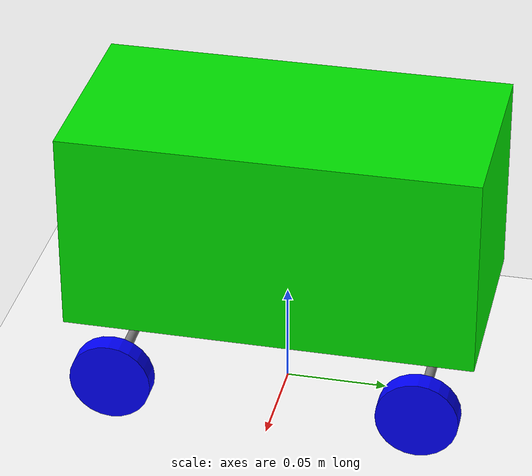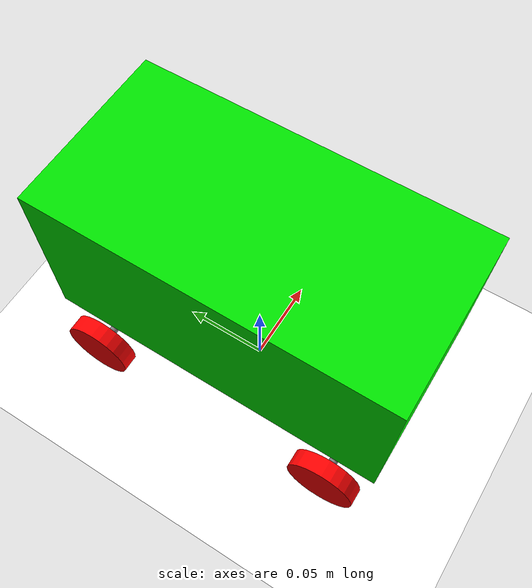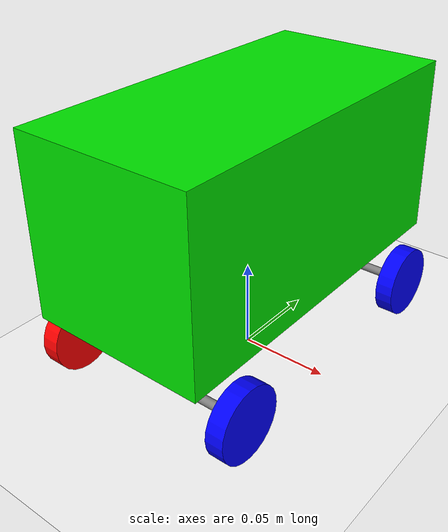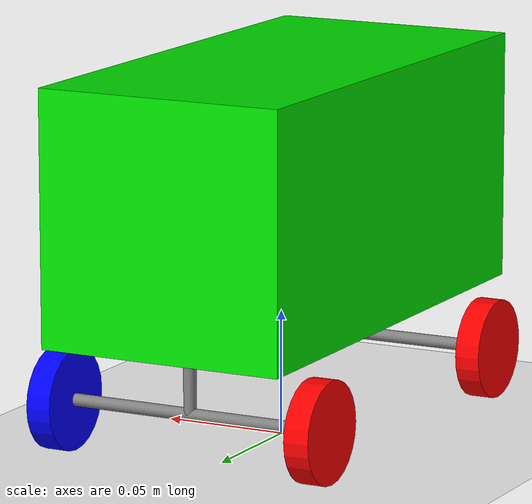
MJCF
<mujoco>
    <asset>
        <texture type="skybox" builtin="gradient" rgb1="1 1 1" rgb2=".6 .8 1" width="256" height="256"/>
    </asset>
    <worldbody>
        <light diffuse=".5 .5 .5" pos="0 0 3" dir="0 0 -1"/>
        <geom type="plane" size="1 1 0.1" rgba="1 1 1 1"/>
        <body pos="0 0 0.1">
            <joint type="free"/>
            <geom type="box" size=".05 .1 .05" rgba="0 .9 0 1"/>
            <body pos="0 .075 -.05">
                <geom type="cylinder" size="0.0025" fromto="0 0 0 0 0 -.025"/>
                <joint type="hinge" axis="0 0 1"/>
                <body pos="0 0 -.025">
                    <geom type="cylinder" size="0.0025" fromto="-.05 0 0 .05 0 0"/>
                    <body pos=".05 0 0">
                        <joint name="front_right_wheel_joint" type="hinge" axis="1 0 0"/>
                        <geom type="cylinder" size="0.02" fromto="0 0 0 .01 0 0" rgba="0 0 1 1"/>
                    </body>
                    <body pos="-.06 0 0">
                        <joint name="front_left_wheel_joint" type="hinge" axis="1 0 0"/>
                        <geom type="cylinder" size="0.02" fromto="0 0 0 .01 0 0" rgba="1 0 0 1"/>
                    </body>
                </body>
            </body>
            <body pos="0 -.075 -.05">
                <geom type="cylinder" size="0.0025" fromto="0 0 0 0 0 -.025"/>
                <body pos="0 0 -.025">
                    <geom type="cylinder" size="0.0025" fromto="-.05 0 0 .05 0 0"/>
                    <body pos=".05 0 0">
                        <joint name="rear_right_wheel_joint" type="hinge" axis="1 0 0"/>
                        <geom type="cylinder" size="0.02" fromto="0 0 0 .01 0 0" rgba="0 0 1 1"/>
                    </body>
                    <body pos="-.06 0 0">
                        <joint name="rear_left_wheel_joint" type="hinge" axis="1 0 0"/>
                        <geom type="cylinder" size="0.02" fromto="0 0 0 .01 0 0" rgba="1 0 0 1"/>
                    </body>
                </body>
            </body>
        </body>
    </worldbody>
</mujoco>
